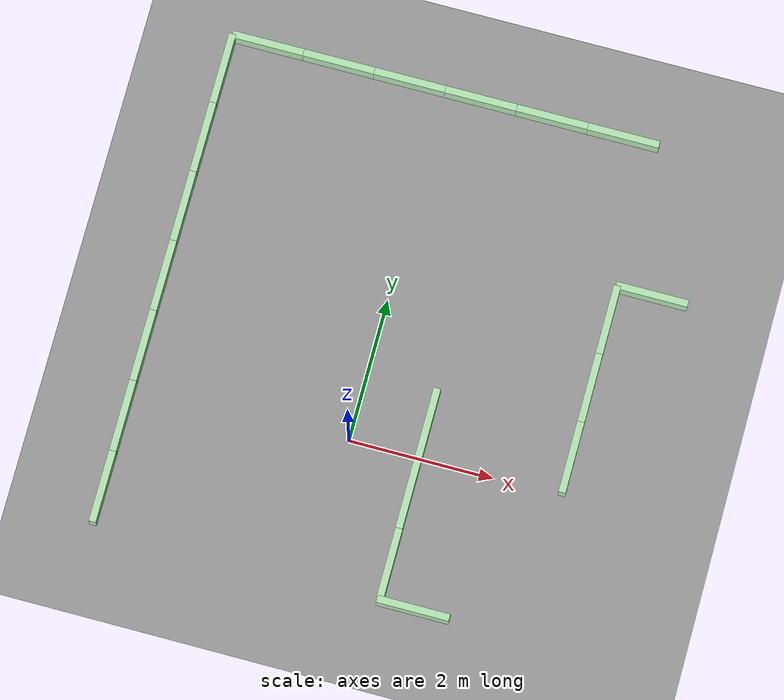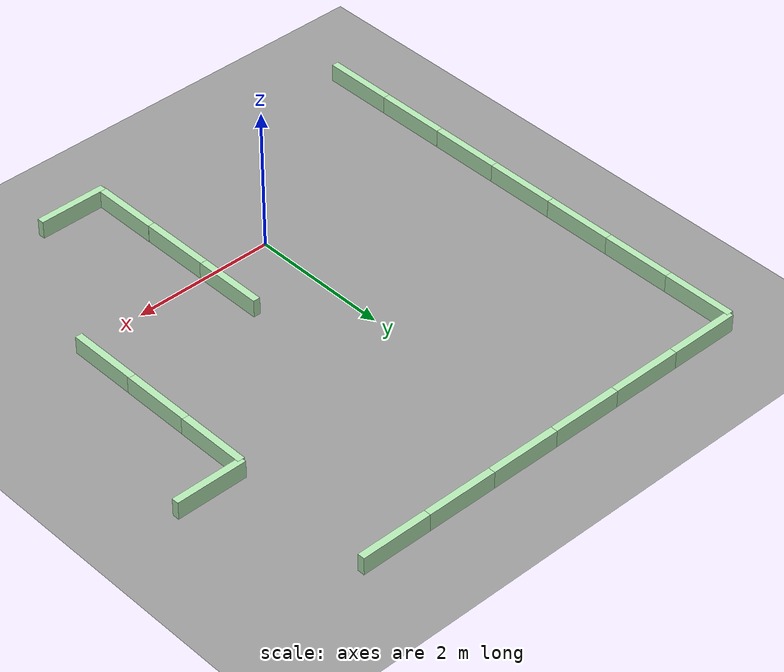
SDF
<sdf version="1.6">
 <world name="default">
  <model name="ground_plane_0">
   <static>1</static>
   <link name="link">
    <collision name="collision">
     <geometry><plane><normal>0 0 1</normal><size>100 100</size></plane></geometry>
     <surface><friction><ode><mu>100</mu><mu2>50</mu2></ode></friction></surface>
    </collision>
    <visual name="visual">
     <cast_shadows>0</cast_shadows>
     <geometry><plane><normal>0 0 1</normal><size>100 100</size></plane></geometry>
     <material>
      <script><uri>file://media/materials/scripts/gazebo.material</uri><name>Gazebo/Grey</name></script>
     </material>
    </visual>
    <velocity_decay><linear>0</linear><angular>0</angular></velocity_decay>
   </link>
   <pose>0.497681 0 0 0 -0 0</pose>
  </model>
  <model name="wall_100_25h_1_clone_9_clone">
   <link name="link">
    <inertial>
     <mass>1</mass>
     <inertia>
      <ixx>0.166667</ixx>
      <ixy>0</ixy>
      <ixz>0</ixz>
      <iyy>0.166667</iyy>
      <iyz>0</iyz>
      <izz>0.166667</izz>
     </inertia>
    </inertial>
    <visual name="visual">
     <geometry><box><size>1 0.1 0.25</size></box></geometry>
     <material>
      <script><name>Gazebo/Grey</name><uri>file://media/materials/scripts/gazebo.material</uri></script>
      <ambient>0.3 0.5 0.3 1</ambient>
      <diffuse>0.7 0.9 0.7 1</diffuse>
      <specular>0.01 0.02 0.01 1</specular>
      <emissive>0 0 0 1</emissive>
      <lighting>1</lighting>
      <shader type="vertex"><normal_map>__default__</normal_map></shader>
     </material>
    </visual>
    <collision name="collision">
     <geometry><box><size>1 0.1 0.25</size></box></geometry>
     <surface>
      <friction>
       <ode><mu>1</mu><mu2>1</mu2><fdir1>0 0 0</fdir1><slip1>0</slip1><slip2>0</slip2></ode>
       <torsional>
        <coefficient>1</coefficient>
        <patch_radius>0</patch_radius>
        <surface_radius>0</surface_radius>
        <use_patch_radius>1</use_patch_radius>
        <ode><slip>0</slip></ode>
       </torsional>
      </friction>
      <bounce><restitution_coefficient>0</restitution_coefficient><threshold>1e+06</threshold></bounce>
      <contact>
       <collide_without_contact>0</collide_without_contact>
       <collide_without_contact_bitmask>1</collide_without_contact_bitmask>
       <collide_bitmask>1</collide_bitmask>
       <ode>
        <soft_cfm>0</soft_cfm>
        <soft_erp>0.2</soft_erp>
        <kp>1e+13</kp>
        <kd>1</kd>
        <max_vel>0.01</max_vel>
        <min_depth>0</min_depth>
       </ode>
       <bullet>
        <split_impulse>1</split_impulse>
        <split_impulse_penetration_threshold>-0.01</split_impulse_penetration_threshold>
        <soft_cfm>0</soft_cfm>
        <soft_erp>0.2</soft_erp>
        <kp>1e+13</kp>
        <kd>1</kd>
       </bullet>
      </contact>
     </surface>
    </collision>
   </link>
   <static>1</static>
   <pose>-3 -1.5 0.125 0 0.000404 -1.57111</pose>
  </model>
  <model name="wall_100_25h_1_clone_9_clone_clone_10">
   <link name="link">
    <inertial>
     <mass>1</mass>
     <inertia>
      <ixx>0.166667</ixx>
      <ixy>0</ixy>
      <ixz>0</ixz>
      <iyy>0.166667</iyy>
      <iyz>0</iyz>
      <izz>0.166667</izz>
     </inertia>
    </inertial>
    <visual name="visual">
     <geometry><box><size>1 0.1 0.25</size></box></geometry>
     <material>
      <script><name>Gazebo/Grey</name><uri>file://media/materials/scripts/gazebo.material</uri></script>
      <ambient>0.3 0.5 0.3 1</ambient>
      <diffuse>0.7 0.9 0.7 1</diffuse>
      <specular>0.01 0.02 0.01 1</specular>
      <emissive>0 0 0 1</emissive>
      <lighting>1</lighting>
      <shader type="vertex"><normal_map>__default__</normal_map></shader>
     </material>
    </visual>
    <collision name="collision">
     <geometry><box><size>1 0.1 0.25</size></box></geometry>
     <surface>
      <friction>
       <ode><mu>1</mu><mu2>1</mu2><fdir1>0 0 0</fdir1><slip1>0</slip1><slip2>0</slip2></ode>
       <torsional>
        <coefficient>1</coefficient>
        <patch_radius>0</patch_radius>
        <surface_radius>0</surface_radius>
        <use_patch_radius>1</use_patch_radius>
        <ode><slip>0</slip></ode>
       </torsional>
      </friction>
      <bounce><restitution_coefficient>0</restitution_coefficient><threshold>1e+06</threshold></bounce>
      <contact>
       <collide_without_contact>0</collide_without_contact>
       <collide_without_contact_bitmask>1</collide_without_contact_bitmask>
       <collide_bitmask>1</collide_bitmask>
       <ode>
        <soft_cfm>0</soft_cfm>
        <soft_erp>0.2</soft_erp>
        <kp>1e+13</kp>
        <kd>1</kd>
        <max_vel>0.01</max_vel>
        <min_depth>0</min_depth>
       </ode>
       <bullet>
        <split_impulse>1</split_impulse>
        <split_impulse_penetration_threshold>-0.01</split_impulse_penetration_threshold>
        <soft_cfm>0</soft_cfm>
        <soft_erp>0.2</soft_erp>
        <kp>1e+13</kp>
        <kd>1</kd>
       </bullet>
      </contact>
     </surface>
    </collision>
   </link>
   <static>1</static>
   <pose>-3 -0.5 0.125 0 0.000404 -1.57111</pose>
  </model>
  <model name="wall_100_25h_1_clone_9_clone_clone_11">
   <link name="link">
    <inertial>
     <mass>1</mass>
     <inertia>
      <ixx>0.166667</ixx>
      <ixy>0</ixy>
      <ixz>0</ixz>
      <iyy>0.166667</iyy>
      <iyz>0</iyz>
      <izz>0.166667</izz>
     </inertia>
    </inertial>
    <visual name="visual">
     <geometry><box><size>1 0.1 0.25</size></box></geometry>
     <material>
      <script><name>Gazebo/Grey</name><uri>file://media/materials/scripts/gazebo.material</uri></script>
      <ambient>0.3 0.5 0.3 1</ambient>
      <diffuse>0.7 0.9 0.7 1</diffuse>
      <specular>0.01 0.02 0.01 1</specular>
      <emissive>0 0 0 1</emissive>
      <lighting>1</lighting>
      <shader type="vertex"><normal_map>__default__</normal_map></shader>
     </material>
    </visual>
    <collision name="collision">
     <geometry><box><size>1 0.1 0.25</size></box></geometry>
     <surface>
      <friction>
       <ode><mu>1</mu><mu2>1</mu2><fdir1>0 0 0</fdir1><slip1>0</slip1><slip2>0</slip2></ode>
       <torsional>
        <coefficient>1</coefficient>
        <patch_radius>0</patch_radius>
        <surface_radius>0</surface_radius>
        <use_patch_radius>1</use_patch_radius>
        <ode><slip>0</slip></ode>
       </torsional>
      </friction>
      <bounce><restitution_coefficient>0</restitution_coefficient><threshold>1e+06</threshold></bounce>
      <contact>
       <collide_without_contact>0</collide_without_contact>
       <collide_without_contact_bitmask>1</collide_without_contact_bitmask>
       <collide_bitmask>1</collide_bitmask>
       <ode>
        <soft_cfm>0</soft_cfm>
        <soft_erp>0.2</soft_erp>
        <kp>1e+13</kp>
        <kd>1</kd>
        <max_vel>0.01</max_vel>
        <min_depth>0</min_depth>
       </ode>
       <bullet>
        <split_impulse>1</split_impulse>
        <split_impulse_penetration_threshold>-0.01</split_impulse_penetration_threshold>
        <soft_cfm>0</soft_cfm>
        <soft_erp>0.2</soft_erp>
        <kp>1e+13</kp>
        <kd>1</kd>
       </bullet>
      </contact>
     </surface>
    </collision>
   </link>
   <static>1</static>
   <pose>-3 0.5 0.125 0 0.000404 -1.57111</pose>
  </model>
  <model name="wall_100_25h_1_clone_9_clone_clone_12">
   <link name="link">
    <inertial>
     <mass>1</mass>
     <inertia>
      <ixx>0.166667</ixx>
      <ixy>0</ixy>
      <ixz>0</ixz>
      <iyy>0.166667</iyy>
      <iyz>0</iyz>
      <izz>0.166667</izz>
     </inertia>
    </inertial>
    <visual name="visual">
     <geometry><box><size>1 0.1 0.25</size></box></geometry>
     <material>
      <script><name>Gazebo/Grey</name><uri>file://media/materials/scripts/gazebo.material</uri></script>
      <ambient>0.3 0.5 0.3 1</ambient>
      <diffuse>0.7 0.9 0.7 1</diffuse>
      <specular>0.01 0.02 0.01 1</specular>
      <emissive>0 0 0 1</emissive>
      <lighting>1</lighting>
      <shader type="vertex"><normal_map>__default__</normal_map></shader>
     </material>
    </visual>
    <collision name="collision">
     <geometry><box><size>1 0.1 0.25</size></box></geometry>
     <surface>
      <friction>
       <ode><mu>1</mu><mu2>1</mu2><fdir1>0 0 0</fdir1><slip1>0</slip1><slip2>0</slip2></ode>
       <torsional>
        <coefficient>1</coefficient>
        <patch_radius>0</patch_radius>
        <surface_radius>0</surface_radius>
        <use_patch_radius>1</use_patch_radius>
        <ode><slip>0</slip></ode>
       </torsional>
      </friction>
      <bounce><restitution_coefficient>0</restitution_coefficient><threshold>1e+06</threshold></bounce>
      <contact>
       <collide_without_contact>0</collide_without_contact>
       <collide_without_contact_bitmask>1</collide_without_contact_bitmask>
       <collide_bitmask>1</collide_bitmask>
       <ode>
        <soft_cfm>0</soft_cfm>
        <soft_erp>0.2</soft_erp>
        <kp>1e+13</kp>
        <kd>1</kd>
        <max_vel>0.01</max_vel>
        <min_depth>0</min_depth>
       </ode>
       <bullet>
        <split_impulse>1</split_impulse>
        <split_impulse_penetration_threshold>-0.01</split_impulse_penetration_threshold>
        <soft_cfm>0</soft_cfm>
        <soft_erp>0.2</soft_erp>
        <kp>1e+13</kp>
        <kd>1</kd>
       </bullet>
      </contact>
     </surface>
    </collision>
   </link>
   <static>1</static>
   <pose>-3 1.5 0.125 0 0.000404 -1.57111</pose>
  </model>
  <model name="wall_100_25h_1_clone_9_clone_clone_13">
   <link name="link">
    <inertial>
     <mass>1</mass>
     <inertia>
      <ixx>0.166667</ixx>
      <ixy>0</ixy>
      <ixz>0</ixz>
      <iyy>0.166667</iyy>
      <iyz>0</iyz>
      <izz>0.166667</izz>
     </inertia>
    </inertial>
    <visual name="visual">
     <geometry><box><size>1 0.1 0.25</size></box></geometry>
     <material>
      <script><name>Gazebo/Grey</name><uri>file://media/materials/scripts/gazebo.material</uri></script>
      <ambient>0.3 0.5 0.3 1</ambient>
      <diffuse>0.7 0.9 0.7 1</diffuse>
      <specular>0.01 0.02 0.01 1</specular>
      <emissive>0 0 0 1</emissive>
      <lighting>1</lighting>
      <shader type="vertex"><normal_map>__default__</normal_map></shader>
     </material>
    </visual>
    <collision name="collision">
     <geometry><box><size>1 0.1 0.25</size></box></geometry>
     <surface>
      <friction>
       <ode><mu>1</mu><mu2>1</mu2><fdir1>0 0 0</fdir1><slip1>0</slip1><slip2>0</slip2></ode>
       <torsional>
        <coefficient>1</coefficient>
        <patch_radius>0</patch_radius>
        <surface_radius>0</surface_radius>
        <use_patch_radius>1</use_patch_radius>
        <ode><slip>0</slip></ode>
       </torsional>
      </friction>
      <bounce><restitution_coefficient>0</restitution_coefficient><threshold>1e+06</threshold></bounce>
      <contact>
       <collide_without_contact>0</collide_without_contact>
       <collide_without_contact_bitmask>1</collide_without_contact_bitmask>
       <collide_bitmask>1</collide_bitmask>
       <ode>
        <soft_cfm>0</soft_cfm>
        <soft_erp>0.2</soft_erp>
        <kp>1e+13</kp>
        <kd>1</kd>
        <max_vel>0.01</max_vel>
        <min_depth>0</min_depth>
       </ode>
       <bullet>
        <split_impulse>1</split_impulse>
        <split_impulse_penetration_threshold>-0.01</split_impulse_penetration_threshold>
        <soft_cfm>0</soft_cfm>
        <soft_erp>0.2</soft_erp>
        <kp>1e+13</kp>
        <kd>1</kd>
       </bullet>
      </contact>
     </surface>
    </collision>
   </link>
   <static>1</static>
   <pose>-3 2.5 0.125 0 0.000404 -1.57111</pose>
  </model>
  <model name="wall_100_25h_1_clone_7_clone">
   <link name="link">
    <inertial>
     <mass>1</mass>
     <inertia>
      <ixx>0.166667</ixx>
      <ixy>0</ixy>
      <ixz>0</ixz>
      <iyy>0.166667</iyy>
      <iyz>0</iyz>
      <izz>0.166667</izz>
     </inertia>
    </inertial>
    <visual name="visual">
     <geometry><box><size>1 0.1 0.25</size></box></geometry>
     <material>
      <script><name>Gazebo/Grey</name><uri>file://media/materials/scripts/gazebo.material</uri></script>
      <ambient>0.3 0.5 0.3 1</ambient>
      <diffuse>0.7 0.9 0.7 1</diffuse>
      <specular>0.01 0.02 0.01 1</specular>
      <emissive>0 0 0 1</emissive>
      <lighting>1</lighting>
      <shader type="vertex"><normal_map>__default__</normal_map></shader>
     </material>
    </visual>
    <collision name="collision">
     <geometry><box><size>1 0.1 0.25</size></box></geometry>
     <surface>
      <friction>
       <ode><mu>1</mu><mu2>1</mu2><fdir1>0 0 0</fdir1><slip1>0</slip1><slip2>0</slip2></ode>
       <torsional>
        <coefficient>1</coefficient>
        <patch_radius>0</patch_radius>
        <surface_radius>0</surface_radius>
        <use_patch_radius>1</use_patch_radius>
        <ode><slip>0</slip></ode>
       </torsional>
      </friction>
      <bounce><restitution_coefficient>0</restitution_coefficient><threshold>1e+06</threshold></bounce>
      <contact>
       <collide_without_contact>0</collide_without_contact>
       <collide_without_contact_bitmask>1</collide_without_contact_bitmask>
       <collide_bitmask>1</collide_bitmask>
       <ode>
        <soft_cfm>0</soft_cfm>
        <soft_erp>0.2</soft_erp>
        <kp>1e+13</kp>
        <kd>1</kd>
        <max_vel>0.01</max_vel>
        <min_depth>0</min_depth>
       </ode>
       <bullet>
        <split_impulse>1</split_impulse>
        <split_impulse_penetration_threshold>-0.01</split_impulse_penetration_threshold>
        <soft_cfm>0</soft_cfm>
        <soft_erp>0.2</soft_erp>
        <kp>1e+13</kp>
        <kd>1</kd>
       </bullet>
      </contact>
     </surface>
    </collision>
   </link>
   <static>1</static>
   <pose>2.5 5 0.125 0.000404 -0 0</pose>
  </model>
  <model name="wall_100_25h_1_clone_7_clone_0">
   <link name="link">
    <inertial>
     <mass>1</mass>
     <inertia>
      <ixx>0.166667</ixx>
      <ixy>0</ixy>
      <ixz>0</ixz>
      <iyy>0.166667</iyy>
      <iyz>0</iyz>
      <izz>0.166667</izz>
     </inertia>
    </inertial>
    <visual name="visual">
     <geometry><box><size>1 0.1 0.25</size></box></geometry>
     <material>
      <script><name>Gazebo/Grey</name><uri>file://media/materials/scripts/gazebo.material</uri></script>
      <ambient>0.3 0.5 0.3 1</ambient>
      <diffuse>0.7 0.9 0.7 1</diffuse>
      <specular>0.01 0.02 0.01 1</specular>
      <emissive>0 0 0 1</emissive>
      <lighting>1</lighting>
      <shader type="vertex"><normal_map>__default__</normal_map></shader>
     </material>
    </visual>
    <collision name="collision">
     <geometry><box><size>1 0.1 0.25</size></box></geometry>
     <surface>
      <friction>
       <ode><mu>1</mu><mu2>1</mu2><fdir1>0 0 0</fdir1><slip1>0</slip1><slip2>0</slip2></ode>
       <torsional>
        <coefficient>1</coefficient>
        <patch_radius>0</patch_radius>
        <surface_radius>0</surface_radius>
        <use_patch_radius>1</use_patch_radius>
        <ode><slip>0</slip></ode>
       </torsional>
      </friction>
      <bounce><restitution_coefficient>0</restitution_coefficient><threshold>1e+06</threshold></bounce>
      <contact>
       <collide_without_contact>0</collide_without_contact>
       <collide_without_contact_bitmask>1</collide_without_contact_bitmask>
       <collide_bitmask>1</collide_bitmask>
       <ode>
        <soft_cfm>0</soft_cfm>
        <soft_erp>0.2</soft_erp>
        <kp>1e+13</kp>
        <kd>1</kd>
        <max_vel>0.01</max_vel>
        <min_depth>0</min_depth>
       </ode>
       <bullet>
        <split_impulse>1</split_impulse>
        <split_impulse_penetration_threshold>-0.01</split_impulse_penetration_threshold>
        <soft_cfm>0</soft_cfm>
        <soft_erp>0.2</soft_erp>
        <kp>1e+13</kp>
        <kd>1</kd>
       </bullet>
      </contact>
     </surface>
    </collision>
   </link>
   <static>1</static>
   <pose>1.5 5 0.125 0.000404 -0 0</pose>
  </model>
  <model name="wall_100_25h_1_clone_7_clone_1">
   <link name="link">
    <inertial>
     <mass>1</mass>
     <inertia>
      <ixx>0.166667</ixx>
      <ixy>0</ixy>
      <ixz>0</ixz>
      <iyy>0.166667</iyy>
      <iyz>0</iyz>
      <izz>0.166667</izz>
     </inertia>
    </inertial>
    <visual name="visual">
     <geometry><box><size>1 0.1 0.25</size></box></geometry>
     <material>
      <script><name>Gazebo/Grey</name><uri>file://media/materials/scripts/gazebo.material</uri></script>
      <ambient>0.3 0.5 0.3 1</ambient>
      <diffuse>0.7 0.9 0.7 1</diffuse>
      <specular>0.01 0.02 0.01 1</specular>
      <emissive>0 0 0 1</emissive>
      <lighting>1</lighting>
      <shader type="vertex"><normal_map>__default__</normal_map></shader>
     </material>
    </visual>
    <collision name="collision">
     <geometry><box><size>1 0.1 0.25</size></box></geometry>
     <surface>
      <friction>
       <ode><mu>1</mu><mu2>1</mu2><fdir1>0 0 0</fdir1><slip1>0</slip1><slip2>0</slip2></ode>
       <torsional>
        <coefficient>1</coefficient>
        <patch_radius>0</patch_radius>
        <surface_radius>0</surface_radius>
        <use_patch_radius>1</use_patch_radius>
        <ode><slip>0</slip></ode>
       </torsional>
      </friction>
      <bounce><restitution_coefficient>0</restitution_coefficient><threshold>1e+06</threshold></bounce>
      <contact>
       <collide_without_contact>0</collide_without_contact>
       <collide_without_contact_bitmask>1</collide_without_contact_bitmask>
       <collide_bitmask>1</collide_bitmask>
       <ode>
        <soft_cfm>0</soft_cfm>
        <soft_erp>0.2</soft_erp>
        <kp>1e+13</kp>
        <kd>1</kd>
        <max_vel>0.01</max_vel>
        <min_depth>0</min_depth>
       </ode>
       <bullet>
        <split_impulse>1</split_impulse>
        <split_impulse_penetration_threshold>-0.01</split_impulse_penetration_threshold>
        <soft_cfm>0</soft_cfm>
        <soft_erp>0.2</soft_erp>
        <kp>1e+13</kp>
        <kd>1</kd>
       </bullet>
      </contact>
     </surface>
    </collision>
   </link>
   <static>1</static>
   <pose>0.5 5 0.125 0.000404 -0 0</pose>
  </model>
  <model name="wall_100_25h_1_clone_7_clone_2">
   <link name="link">
    <inertial>
     <mass>1</mass>
     <inertia>
      <ixx>0.166667</ixx>
      <ixy>0</ixy>
      <ixz>0</ixz>
      <iyy>0.166667</iyy>
      <iyz>0</iyz>
      <izz>0.166667</izz>
     </inertia>
    </inertial>
    <visual name="visual">
     <geometry><box><size>1 0.1 0.25</size></box></geometry>
     <material>
      <script><name>Gazebo/Grey</name><uri>file://media/materials/scripts/gazebo.material</uri></script>
      <ambient>0.3 0.5 0.3 1</ambient>
      <diffuse>0.7 0.9 0.7 1</diffuse>
      <specular>0.01 0.02 0.01 1</specular>
      <emissive>0 0 0 1</emissive>
      <lighting>1</lighting>
      <shader type="vertex"><normal_map>__default__</normal_map></shader>
     </material>
    </visual>
    <collision name="collision">
     <geometry><box><size>1 0.1 0.25</size></box></geometry>
     <surface>
      <friction>
       <ode><mu>1</mu><mu2>1</mu2><fdir1>0 0 0</fdir1><slip1>0</slip1><slip2>0</slip2></ode>
       <torsional>
        <coefficient>1</coefficient>
        <patch_radius>0</patch_radius>
        <surface_radius>0</surface_radius>
        <use_patch_radius>1</use_patch_radius>
        <ode><slip>0</slip></ode>
       </torsional>
      </friction>
      <bounce><restitution_coefficient>0</restitution_coefficient><threshold>1e+06</threshold></bounce>
      <contact>
       <collide_without_contact>0</collide_without_contact>
       <collide_without_contact_bitmask>1</collide_without_contact_bitmask>
       <collide_bitmask>1</collide_bitmask>
       <ode>
        <soft_cfm>0</soft_cfm>
        <soft_erp>0.2</soft_erp>
        <kp>1e+13</kp>
        <kd>1</kd>
        <max_vel>0.01</max_vel>
        <min_depth>0</min_depth>
       </ode>
       <bullet>
        <split_impulse>1</split_impulse>
        <split_impulse_penetration_threshold>-0.01</split_impulse_penetration_threshold>
        <soft_cfm>0</soft_cfm>
        <soft_erp>0.2</soft_erp>
        <kp>1e+13</kp>
        <kd>1</kd>
       </bullet>
      </contact>
     </surface>
    </collision>
   </link>
   <static>1</static>
   <pose>-0.5 5 0.125 0.000404 -0 0</pose>
  </model>
  <model name="wall_100_25h_1_clone_7_clone_3">
   <link name="link">
    <inertial>
     <mass>1</mass>
     <inertia>
      <ixx>0.166667</ixx>
      <ixy>0</ixy>
      <ixz>0</ixz>
      <iyy>0.166667</iyy>
      <iyz>0</iyz>
      <izz>0.166667</izz>
     </inertia>
    </inertial>
    <visual name="visual">
     <geometry><box><size>1 0.1 0.25</size></box></geometry>
     <material>
      <script><name>Gazebo/Grey</name><uri>file://media/materials/scripts/gazebo.material</uri></script>
      <ambient>0.3 0.5 0.3 1</ambient>
      <diffuse>0.7 0.9 0.7 1</diffuse>
      <specular>0.01 0.02 0.01 1</specular>
      <emissive>0 0 0 1</emissive>
      <lighting>1</lighting>
      <shader type="vertex"><normal_map>__default__</normal_map></shader>
     </material>
    </visual>
    <collision name="collision">
     <geometry><box><size>1 0.1 0.25</size></box></geometry>
     <surface>
      <friction>
       <ode><mu>1</mu><mu2>1</mu2><fdir1>0 0 0</fdir1><slip1>0</slip1><slip2>0</slip2></ode>
       <torsional>
        <coefficient>1</coefficient>
        <patch_radius>0</patch_radius>
        <surface_radius>0</surface_radius>
        <use_patch_radius>1</use_patch_radius>
        <ode><slip>0</slip></ode>
       </torsional>
      </friction>
      <bounce><restitution_coefficient>0</restitution_coefficient><threshold>1e+06</threshold></bounce>
      <contact>
       <collide_without_contact>0</collide_without_contact>
       <collide_without_contact_bitmask>1</collide_without_contact_bitmask>
       <collide_bitmask>1</collide_bitmask>
       <ode>
        <soft_cfm>0</soft_cfm>
        <soft_erp>0.2</soft_erp>
        <kp>1e+13</kp>
        <kd>1</kd>
        <max_vel>0.01</max_vel>
        <min_depth>0</min_depth>
       </ode>
       <bullet>
        <split_impulse>1</split_impulse>
        <split_impulse_penetration_threshold>-0.01</split_impulse_penetration_threshold>
        <soft_cfm>0</soft_cfm>
        <soft_erp>0.2</soft_erp>
        <kp>1e+13</kp>
        <kd>1</kd>
       </bullet>
      </contact>
     </surface>
    </collision>
   </link>
   <static>1</static>
   <pose>-1.5 5 0.125 0.000404 -0 0</pose>
  </model>
  <model name="wall_100_25h_1_clone_7_clone_4">
   <link name="link">
    <inertial>
     <mass>1</mass>
     <inertia>
      <ixx>0.166667</ixx>
      <ixy>0</ixy>
      <ixz>0</ixz>
      <iyy>0.166667</iyy>
      <iyz>0</iyz>
      <izz>0.166667</izz>
     </inertia>
    </inertial>
    <visual name="visual">
     <geometry><box><size>1 0.1 0.25</size></box></geometry>
     <material>
      <script><name>Gazebo/Grey</name><uri>file://media/materials/scripts/gazebo.material</uri></script>
      <ambient>0.3 0.5 0.3 1</ambient>
      <diffuse>0.7 0.9 0.7 1</diffuse>
      <specular>0.01 0.02 0.01 1</specular>
      <emissive>0 0 0 1</emissive>
      <lighting>1</lighting>
      <shader type="vertex"><normal_map>__default__</normal_map></shader>
     </material>
    </visual>
    <collision name="collision">
     <geometry><box><size>1 0.1 0.25</size></box></geometry>
     <surface>
      <friction>
       <ode><mu>1</mu><mu2>1</mu2><fdir1>0 0 0</fdir1><slip1>0</slip1><slip2>0</slip2></ode>
       <torsional>
        <coefficient>1</coefficient>
        <patch_radius>0</patch_radius>
        <surface_radius>0</surface_radius>
        <use_patch_radius>1</use_patch_radius>
        <ode><slip>0</slip></ode>
       </torsional>
      </friction>
      <bounce><restitution_coefficient>0</restitution_coefficient><threshold>1e+06</threshold></bounce>
      <contact>
       <collide_without_contact>0</collide_without_contact>
       <collide_without_contact_bitmask>1</collide_without_contact_bitmask>
       <collide_bitmask>1</collide_bitmask>
       <ode>
        <soft_cfm>0</soft_cfm>
        <soft_erp>0.2</soft_erp>
        <kp>1e+13</kp>
        <kd>1</kd>
        <max_vel>0.01</max_vel>
        <min_depth>0</min_depth>
       </ode>
       <bullet>
        <split_impulse>1</split_impulse>
        <split_impulse_penetration_threshold>-0.01</split_impulse_penetration_threshold>
        <soft_cfm>0</soft_cfm>
        <soft_erp>0.2</soft_erp>
        <kp>1e+13</kp>
        <kd>1</kd>
       </bullet>
      </contact>
     </surface>
    </collision>
   </link>
   <static>1</static>
   <pose>-2.5 5 0.125 0.000404 -0 0</pose>
  </model>
  <model name="wall_100_25h_1_clone_9_clone_clone_13_clone">
   <link name="link">
    <inertial>
     <mass>1</mass>
     <inertia>
      <ixx>0.166667</ixx>
      <ixy>0</ixy>
      <ixz>0</ixz>
      <iyy>0.166667</iyy>
      <iyz>0</iyz>
      <izz>0.166667</izz>
     </inertia>
    </inertial>
    <visual name="visual">
     <geometry><box><size>1 0.1 0.25</size></box></geometry>
     <material>
      <script><name>Gazebo/Grey</name><uri>file://media/materials/scripts/gazebo.material</uri></script>
      <ambient>0.3 0.5 0.3 1</ambient>
      <diffuse>0.7 0.9 0.7 1</diffuse>
      <specular>0.01 0.02 0.01 1</specular>
      <emissive>0 0 0 1</emissive>
      <lighting>1</lighting>
      <shader type="vertex"><normal_map>__default__</normal_map></shader>
     </material>
    </visual>
    <collision name="collision">
     <geometry><box><size>1 0.1 0.25</size></box></geometry>
     <surface>
      <friction>
       <ode><mu>1</mu><mu2>1</mu2><fdir1>0 0 0</fdir1><slip1>0</slip1><slip2>0</slip2></ode>
       <torsional>
        <coefficient>1</coefficient>
        <patch_radius>0</patch_radius>
        <surface_radius>0</surface_radius>
        <use_patch_radius>1</use_patch_radius>
        <ode><slip>0</slip></ode>
       </torsional>
      </friction>
      <bounce><restitution_coefficient>0</restitution_coefficient><threshold>1e+06</threshold></bounce>
      <contact>
       <collide_without_contact>0</collide_without_contact>
       <collide_without_contact_bitmask>1</collide_without_contact_bitmask>
       <collide_bitmask>1</collide_bitmask>
       <ode>
        <soft_cfm>0</soft_cfm>
        <soft_erp>0.2</soft_erp>
        <kp>1e+13</kp>
        <kd>1</kd>
        <max_vel>0.01</max_vel>
        <min_depth>0</min_depth>
       </ode>
       <bullet>
        <split_impulse>1</split_impulse>
        <split_impulse_penetration_threshold>-0.01</split_impulse_penetration_threshold>
        <soft_cfm>0</soft_cfm>
        <soft_erp>0.2</soft_erp>
        <kp>1e+13</kp>
        <kd>1</kd>
       </bullet>
      </contact>
     </surface>
    </collision>
   </link>
   <static>1</static>
   <pose>-3 3.5 0.125 0 0.000404 -1.57111</pose>
  </model>
  <model name="wall_100_25h_1_clone_9_clone_clone_13_clone_0">
   <link name="link">
    <inertial>
     <mass>1</mass>
     <inertia>
      <ixx>0.166667</ixx>
      <ixy>0</ixy>
      <ixz>0</ixz>
      <iyy>0.166667</iyy>
      <iyz>0</iyz>
      <izz>0.166667</izz>
     </inertia>
    </inertial>
    <visual name="visual">
     <geometry><box><size>1 0.1 0.25</size></box></geometry>
     <material>
      <script><name>Gazebo/Grey</name><uri>file://media/materials/scripts/gazebo.material</uri></script>
      <ambient>0.3 0.5 0.3 1</ambient>
      <diffuse>0.7 0.9 0.7 1</diffuse>
      <specular>0.01 0.02 0.01 1</specular>
      <emissive>0 0 0 1</emissive>
      <lighting>1</lighting>
      <shader type="vertex"><normal_map>__default__</normal_map></shader>
     </material>
    </visual>
    <collision name="collision">
     <geometry><box><size>1 0.1 0.25</size></box></geometry>
     <surface>
      <friction>
       <ode><mu>1</mu><mu2>1</mu2><fdir1>0 0 0</fdir1><slip1>0</slip1><slip2>0</slip2></ode>
       <torsional>
        <coefficient>1</coefficient>
        <patch_radius>0</patch_radius>
        <surface_radius>0</surface_radius>
        <use_patch_radius>1</use_patch_radius>
        <ode><slip>0</slip></ode>
       </torsional>
      </friction>
      <bounce><restitution_coefficient>0</restitution_coefficient><threshold>1e+06</threshold></bounce>
      <contact>
       <collide_without_contact>0</collide_without_contact>
       <collide_without_contact_bitmask>1</collide_without_contact_bitmask>
       <collide_bitmask>1</collide_bitmask>
       <ode>
        <soft_cfm>0</soft_cfm>
        <soft_erp>0.2</soft_erp>
        <kp>1e+13</kp>
        <kd>1</kd>
        <max_vel>0.01</max_vel>
        <min_depth>0</min_depth>
       </ode>
       <bullet>
        <split_impulse>1</split_impulse>
        <split_impulse_penetration_threshold>-0.01</split_impulse_penetration_threshold>
        <soft_cfm>0</soft_cfm>
        <soft_erp>0.2</soft_erp>
        <kp>1e+13</kp>
        <kd>1</kd>
       </bullet>
      </contact>
     </surface>
    </collision>
   </link>
   <static>1</static>
   <pose>-3 4.5 0.125 0 0.000404 -1.57111</pose>
  </model>
  <model name="wall_100_25h_1_clone_9_clone_clone_0_clone">
   <link name="link">
    <inertial>
     <mass>1</mass>
     <inertia>
      <ixx>0.166667</ixx>
      <ixy>0</ixy>
      <ixz>0</ixz>
      <iyy>0.166667</iyy>
      <iyz>0</iyz>
      <izz>0.166667</izz>
     </inertia>
    </inertial>
    <visual name="visual">
     <geometry><box><size>1 0.1 0.25</size></box></geometry>
     <material>
      <script><name>Gazebo/Grey</name><uri>file://media/materials/scripts/gazebo.material</uri></script>
      <ambient>0.3 0.5 0.3 1</ambient>
      <diffuse>0.7 0.9 0.7 1</diffuse>
      <specular>0.01 0.02 0.01 1</specular>
      <emissive>0 0 0 1</emissive>
      <lighting>1</lighting>
      <shader type="vertex"><normal_map>__default__</normal_map></shader>
     </material>
    </visual>
    <collision name="collision">
     <geometry><box><size>1 0.1 0.25</size></box></geometry>
     <surface>
      <friction>
       <ode><mu>1</mu><mu2>1</mu2><fdir1>0 0 0</fdir1><slip1>0</slip1><slip2>0</slip2></ode>
       <torsional>
        <coefficient>1</coefficient>
        <patch_radius>0</patch_radius>
        <surface_radius>0</surface_radius>
        <use_patch_radius>1</use_patch_radius>
        <ode><slip>0</slip></ode>
       </torsional>
      </friction>
      <bounce><restitution_coefficient>0</restitution_coefficient><threshold>1e+06</threshold></bounce>
      <contact>
       <collide_without_contact>0</collide_without_contact>
       <collide_without_contact_bitmask>1</collide_without_contact_bitmask>
       <collide_bitmask>1</collide_bitmask>
       <ode>
        <soft_cfm>0</soft_cfm>
        <soft_erp>0.2</soft_erp>
        <kp>1e+13</kp>
        <kd>1</kd>
        <max_vel>0.01</max_vel>
        <min_depth>0</min_depth>
       </ode>
       <bullet>
        <split_impulse>1</split_impulse>
        <split_impulse_penetration_threshold>-0.01</split_impulse_penetration_threshold>
        <soft_cfm>0</soft_cfm>
        <soft_erp>0.2</soft_erp>
        <kp>1e+13</kp>
        <kd>1</kd>
       </bullet>
      </contact>
     </surface>
    </collision>
   </link>
   <static>1</static>
   <pose>0.969248 -1.52143 0.125 0 0.000404 -1.57111</pose>
  </model>
  <model name="wall_100_25h_1_clone_9_clone_clone_0_clone_0">
   <link name="link">
    <inertial>
     <mass>1</mass>
     <inertia>
      <ixx>0.166667</ixx>
      <ixy>0</ixy>
      <ixz>0</ixz>
      <iyy>0.166667</iyy>
      <iyz>0</iyz>
      <izz>0.166667</izz>
     </inertia>
    </inertial>
    <visual name="visual">
     <geometry><box><size>1 0.1 0.25</size></box></geometry>
     <material>
      <script><name>Gazebo/Grey</name><uri>file://media/materials/scripts/gazebo.material</uri></script>
      <ambient>0.3 0.5 0.3 1</ambient>
      <diffuse>0.7 0.9 0.7 1</diffuse>
      <specular>0.01 0.02 0.01 1</specular>
      <emissive>0 0 0 1</emissive>
      <lighting>1</lighting>
      <shader type="vertex"><normal_map>__default__</normal_map></shader>
     </material>
    </visual>
    <collision name="collision">
     <geometry><box><size>1 0.1 0.25</size></box></geometry>
     <surface>
      <friction>
       <ode><mu>1</mu><mu2>1</mu2><fdir1>0 0 0</fdir1><slip1>0</slip1><slip2>0</slip2></ode>
       <torsional>
        <coefficient>1</coefficient>
        <patch_radius>0</patch_radius>
        <surface_radius>0</surface_radius>
        <use_patch_radius>1</use_patch_radius>
        <ode><slip>0</slip></ode>
       </torsional>
      </friction>
      <bounce><restitution_coefficient>0</restitution_coefficient><threshold>1e+06</threshold></bounce>
      <contact>
       <collide_without_contact>0</collide_without_contact>
       <collide_without_contact_bitmask>1</collide_without_contact_bitmask>
       <collide_bitmask>1</collide_bitmask>
       <ode>
        <soft_cfm>0</soft_cfm>
        <soft_erp>0.2</soft_erp>
        <kp>1e+13</kp>
        <kd>1</kd>
        <max_vel>0.01</max_vel>
        <min_depth>0</min_depth>
       </ode>
       <bullet>
        <split_impulse>1</split_impulse>
        <split_impulse_penetration_threshold>-0.01</split_impulse_penetration_threshold>
        <soft_cfm>0</soft_cfm>
        <soft_erp>0.2</soft_erp>
        <kp>1e+13</kp>
        <kd>1</kd>
       </bullet>
      </contact>
     </surface>
    </collision>
   </link>
   <static>1</static>
   <pose>0.966246 -0.52327 0.125 0 0.000404 -1.57111</pose>
  </model>
  <model name="wall_100_25h_1_clone_9_clone_clone_0_clone_1">
   <link name="link">
    <inertial>
     <mass>1</mass>
     <inertia>
      <ixx>0.166667</ixx>
      <ixy>0</ixy>
      <ixz>0</ixz>
      <iyy>0.166667</iyy>
      <iyz>0</iyz>
      <izz>0.166667</izz>
     </inertia>
    </inertial>
    <visual name="visual">
     <geometry><box><size>1 0.1 0.25</size></box></geometry>
     <material>
      <script><name>Gazebo/Grey</name><uri>file://media/materials/scripts/gazebo.material</uri></script>
      <ambient>0.3 0.5 0.3 1</ambient>
      <diffuse>0.7 0.9 0.7 1</diffuse>
      <specular>0.01 0.02 0.01 1</specular>
      <emissive>0 0 0 1</emissive>
      <lighting>1</lighting>
      <shader type="vertex"><normal_map>__default__</normal_map></shader>
     </material>
    </visual>
    <collision name="collision">
     <geometry><box><size>1 0.1 0.25</size></box></geometry>
     <surface>
      <friction>
       <ode><mu>1</mu><mu2>1</mu2><fdir1>0 0 0</fdir1><slip1>0</slip1><slip2>0</slip2></ode>
       <torsional>
        <coefficient>1</coefficient>
        <patch_radius>0</patch_radius>
        <surface_radius>0</surface_radius>
        <use_patch_radius>1</use_patch_radius>
        <ode><slip>0</slip></ode>
       </torsional>
      </friction>
      <bounce><restitution_coefficient>0</restitution_coefficient><threshold>1e+06</threshold></bounce>
      <contact>
       <collide_without_contact>0</collide_without_contact>
       <collide_without_contact_bitmask>1</collide_without_contact_bitmask>
       <collide_bitmask>1</collide_bitmask>
       <ode>
        <soft_cfm>0</soft_cfm>
        <soft_erp>0.2</soft_erp>
        <kp>1e+13</kp>
        <kd>1</kd>
        <max_vel>0.01</max_vel>
        <min_depth>0</min_depth>
       </ode>
       <bullet>
        <split_impulse>1</split_impulse>
        <split_impulse_penetration_threshold>-0.01</split_impulse_penetration_threshold>
        <soft_cfm>0</soft_cfm>
        <soft_erp>0.2</soft_erp>
        <kp>1e+13</kp>
        <kd>1</kd>
       </bullet>
      </contact>
     </surface>
    </collision>
   </link>
   <static>1</static>
   <pose>0.966809 0.456326 0.125 0 0.000404 -1.57111</pose>
  </model>
  <model name="wall_100_25h_1_clone_9_clone_clone_0_clone_2">
   <link name="link">
    <inertial>
     <mass>1</mass>
     <inertia>
      <ixx>0.166667</ixx>
      <ixy>0</ixy>
      <ixz>0</ixz>
      <iyy>0.166667</iyy>
      <iyz>0</iyz>
      <izz>0.166667</izz>
     </inertia>
    </inertial>
    <visual name="visual">
     <geometry><box><size>1 0.1 0.25</size></box></geometry>
     <material>
      <script><name>Gazebo/Grey</name><uri>file://media/materials/scripts/gazebo.material</uri></script>
      <ambient>0.3 0.5 0.3 1</ambient>
      <diffuse>0.7 0.9 0.7 1</diffuse>
      <specular>0.01 0.02 0.01 1</specular>
      <emissive>0 0 0 1</emissive>
      <lighting>1</lighting>
      <shader type="vertex"><normal_map>__default__</normal_map></shader>
     </material>
    </visual>
    <collision name="collision">
     <geometry><box><size>1 0.1 0.25</size></box></geometry>
     <surface>
      <friction>
       <ode><mu>1</mu><mu2>1</mu2><fdir1>0 0 0</fdir1><slip1>0</slip1><slip2>0</slip2></ode>
       <torsional>
        <coefficient>1</coefficient>
        <patch_radius>0</patch_radius>
        <surface_radius>0</surface_radius>
        <use_patch_radius>1</use_patch_radius>
        <ode><slip>0</slip></ode>
       </torsional>
      </friction>
      <bounce><restitution_coefficient>0</restitution_coefficient><threshold>1e+06</threshold></bounce>
      <contact>
       <collide_without_contact>0</collide_without_contact>
       <collide_without_contact_bitmask>1</collide_without_contact_bitmask>
       <collide_bitmask>1</collide_bitmask>
       <ode>
        <soft_cfm>0</soft_cfm>
        <soft_erp>0.2</soft_erp>
        <kp>1e+13</kp>
        <kd>1</kd>
        <max_vel>0.01</max_vel>
        <min_depth>0</min_depth>
       </ode>
       <bullet>
        <split_impulse>1</split_impulse>
        <split_impulse_penetration_threshold>-0.01</split_impulse_penetration_threshold>
        <soft_cfm>0</soft_cfm>
        <soft_erp>0.2</soft_erp>
        <kp>1e+13</kp>
        <kd>1</kd>
       </bullet>
      </contact>
     </surface>
    </collision>
   </link>
   <static>1</static>
   <pose>2.94004 0.512356 0.125 0 0.000404 -1.57111</pose>
  </model>
  <model name="wall_100_25h_1_clone_9_clone_clone_0_clone_3">
   <link name="link">
    <inertial>
     <mass>1</mass>
     <inertia>
      <ixx>0.166667</ixx>
      <ixy>0</ixy>
      <ixz>0</ixz>
      <iyy>0.166667</iyy>
      <iyz>0</iyz>
      <izz>0.166667</izz>
     </inertia>
    </inertial>
    <visual name="visual">
     <geometry><box><size>1 0.1 0.25</size></box></geometry>
     <material>
      <script><name>Gazebo/Grey</name><uri>file://media/materials/scripts/gazebo.material</uri></script>
      <ambient>0.3 0.5 0.3 1</ambient>
      <diffuse>0.7 0.9 0.7 1</diffuse>
      <specular>0.01 0.02 0.01 1</specular>
      <emissive>0 0 0 1</emissive>
      <lighting>1</lighting>
      <shader type="vertex"><normal_map>__default__</normal_map></shader>
     </material>
    </visual>
    <collision name="collision">
     <geometry><box><size>1 0.1 0.25</size></box></geometry>
     <surface>
      <friction>
       <ode><mu>1</mu><mu2>1</mu2><fdir1>0 0 0</fdir1><slip1>0</slip1><slip2>0</slip2></ode>
       <torsional>
        <coefficient>1</coefficient>
        <patch_radius>0</patch_radius>
        <surface_radius>0</surface_radius>
        <use_patch_radius>1</use_patch_radius>
        <ode><slip>0</slip></ode>
       </torsional>
      </friction>
      <bounce><restitution_coefficient>0</restitution_coefficient><threshold>1e+06</threshold></bounce>
      <contact>
       <collide_without_contact>0</collide_without_contact>
       <collide_without_contact_bitmask>1</collide_without_contact_bitmask>
       <collide_bitmask>1</collide_bitmask>
       <ode>
        <soft_cfm>0</soft_cfm>
        <soft_erp>0.2</soft_erp>
        <kp>1e+13</kp>
        <kd>1</kd>
        <max_vel>0.01</max_vel>
        <min_depth>0</min_depth>
       </ode>
       <bullet>
        <split_impulse>1</split_impulse>
        <split_impulse_penetration_threshold>-0.01</split_impulse_penetration_threshold>
        <soft_cfm>0</soft_cfm>
        <soft_erp>0.2</soft_erp>
        <kp>1e+13</kp>
        <kd>1</kd>
       </bullet>
      </contact>
     </surface>
    </collision>
   </link>
   <static>1</static>
   <pose>2.94116 1.47921 0.125 0 0.000404 -1.57111</pose>
  </model>
  <model name="wall_100_25h_1_clone_9_clone_clone_0_clone_4">
   <link name="link">
    <inertial>
     <mass>1</mass>
     <inertia>
      <ixx>0.166667</ixx>
      <ixy>0</ixy>
      <ixz>0</ixz>
      <iyy>0.166667</iyy>
      <iyz>0</iyz>
      <izz>0.166667</izz>
     </inertia>
    </inertial>
    <visual name="visual">
     <geometry><box><size>1 0.1 0.25</size></box></geometry>
     <material>
      <script><name>Gazebo/Grey</name><uri>file://media/materials/scripts/gazebo.material</uri></script>
      <ambient>0.3 0.5 0.3 1</ambient>
      <diffuse>0.7 0.9 0.7 1</diffuse>
      <specular>0.01 0.02 0.01 1</specular>
      <emissive>0 0 0 1</emissive>
      <lighting>1</lighting>
      <shader type="vertex"><normal_map>__default__</normal_map></shader>
     </material>
    </visual>
    <collision name="collision">
     <geometry><box><size>1 0.1 0.25</size></box></geometry>
     <surface>
      <friction>
       <ode><mu>1</mu><mu2>1</mu2><fdir1>0 0 0</fdir1><slip1>0</slip1><slip2>0</slip2></ode>
       <torsional>
        <coefficient>1</coefficient>
        <patch_radius>0</patch_radius>
        <surface_radius>0</surface_radius>
        <use_patch_radius>1</use_patch_radius>
        <ode><slip>0</slip></ode>
       </torsional>
      </friction>
      <bounce><restitution_coefficient>0</restitution_coefficient><threshold>1e+06</threshold></bounce>
      <contact>
       <collide_without_contact>0</collide_without_contact>
       <collide_without_contact_bitmask>1</collide_without_contact_bitmask>
       <collide_bitmask>1</collide_bitmask>
       <ode>
        <soft_cfm>0</soft_cfm>
        <soft_erp>0.2</soft_erp>
        <kp>1e+13</kp>
        <kd>1</kd>
        <max_vel>0.01</max_vel>
        <min_depth>0</min_depth>
       </ode>
       <bullet>
        <split_impulse>1</split_impulse>
        <split_impulse_penetration_threshold>-0.01</split_impulse_penetration_threshold>
        <soft_cfm>0</soft_cfm>
        <soft_erp>0.2</soft_erp>
        <kp>1e+13</kp>
        <kd>1</kd>
       </bullet>
      </contact>
     </surface>
    </collision>
   </link>
   <static>1</static>
   <pose>2.94228 2.45265 0.125 0 0.000404 -1.57111</pose>
  </model>
  <model name="wall_100_25h_1_clone_7_clone_clone">
   <link name="link">
    <inertial>
     <mass>1</mass>
     <inertia>
      <ixx>0.166667</ixx>
      <ixy>0</ixy>
      <ixz>0</ixz>
      <iyy>0.166667</iyy>
      <iyz>0</iyz>
      <izz>0.166667</izz>
     </inertia>
    </inertial>
    <visual name="visual">
     <geometry><box><size>1 0.1 0.25</size></box></geometry>
     <material>
      <script><name>Gazebo/Grey</name><uri>file://media/materials/scripts/gazebo.material</uri></script>
      <ambient>0.3 0.5 0.3 1</ambient>
      <diffuse>0.7 0.9 0.7 1</diffuse>
      <specular>0.01 0.02 0.01 1</specular>
      <emissive>0 0 0 1</emissive>
      <lighting>1</lighting>
      <shader type="vertex"><normal_map>__default__</normal_map></shader>
     </material>
    </visual>
    <collision name="collision">
     <geometry><box><size>1 0.1 0.25</size></box></geometry>
     <surface>
      <friction>
       <ode><mu>1</mu><mu2>1</mu2><fdir1>0 0 0</fdir1><slip1>0</slip1><slip2>0</slip2></ode>
       <torsional>
        <coefficient>1</coefficient>
        <patch_radius>0</patch_radius>
        <surface_radius>0</surface_radius>
        <use_patch_radius>1</use_patch_radius>
        <ode><slip>0</slip></ode>
       </torsional>
      </friction>
      <bounce><restitution_coefficient>0</restitution_coefficient><threshold>1e+06</threshold></bounce>
      <contact>
       <collide_without_contact>0</collide_without_contact>
       <collide_without_contact_bitmask>1</collide_without_contact_bitmask>
       <collide_bitmask>1</collide_bitmask>
       <ode>
        <soft_cfm>0</soft_cfm>
        <soft_erp>0.2</soft_erp>
        <kp>1e+13</kp>
        <kd>1</kd>
        <max_vel>0.01</max_vel>
        <min_depth>0</min_depth>
       </ode>
       <bullet>
        <split_impulse>1</split_impulse>
        <split_impulse_penetration_threshold>-0.01</split_impulse_penetration_threshold>
        <soft_cfm>0</soft_cfm>
        <soft_erp>0.2</soft_erp>
        <kp>1e+13</kp>
        <kd>1</kd>
       </bullet>
      </contact>
     </surface>
    </collision>
   </link>
   <static>1</static>
   <pose>3.42234 2.95655 0.125 0.000404 -0 0</pose>
  </model>
  <model name="wall_100_25h_1_clone_7_clone_clone_1">
   <link name="link">
    <inertial>
     <mass>1</mass>
     <inertia>
      <ixx>0.166667</ixx>
      <ixy>0</ixy>
      <ixz>0</ixz>
      <iyy>0.166667</iyy>
      <iyz>0</iyz>
      <izz>0.166667</izz>
     </inertia>
    </inertial>
    <visual name="visual">
     <geometry><box><size>1 0.1 0.25</size></box></geometry>
     <material>
      <script><name>Gazebo/Grey</name><uri>file://media/materials/scripts/gazebo.material</uri></script>
      <ambient>0.3 0.5 0.3 1</ambient>
      <diffuse>0.7 0.9 0.7 1</diffuse>
      <specular>0.01 0.02 0.01 1</specular>
      <emissive>0 0 0 1</emissive>
      <lighting>1</lighting>
      <shader type="vertex"><normal_map>__default__</normal_map></shader>
     </material>
    </visual>
    <collision name="collision">
     <geometry><box><size>1 0.1 0.25</size></box></geometry>
     <surface>
      <friction>
       <ode><mu>1</mu><mu2>1</mu2><fdir1>0 0 0</fdir1><slip1>0</slip1><slip2>0</slip2></ode>
       <torsional>
        <coefficient>1</coefficient>
        <patch_radius>0</patch_radius>
        <surface_radius>0</surface_radius>
        <use_patch_radius>1</use_patch_radius>
        <ode><slip>0</slip></ode>
       </torsional>
      </friction>
      <bounce><restitution_coefficient>0</restitution_coefficient><threshold>1e+06</threshold></bounce>
      <contact>
       <collide_without_contact>0</collide_without_contact>
       <collide_without_contact_bitmask>1</collide_without_contact_bitmask>
       <collide_bitmask>1</collide_bitmask>
       <ode>
        <soft_cfm>0</soft_cfm>
        <soft_erp>0.2</soft_erp>
        <kp>1e+13</kp>
        <kd>1</kd>
        <max_vel>0.01</max_vel>
        <min_depth>0</min_depth>
       </ode>
       <bullet>
        <split_impulse>1</split_impulse>
        <split_impulse_penetration_threshold>-0.01</split_impulse_penetration_threshold>
        <soft_cfm>0</soft_cfm>
        <soft_erp>0.2</soft_erp>
        <kp>1e+13</kp>
        <kd>1</kd>
       </bullet>
      </contact>
     </surface>
    </collision>
   </link>
   <static>1</static>
   <pose>1.42976 -2.01534 0.125 0.000404 -0 0</pose>
  </model>
 </world>
</sdf>
